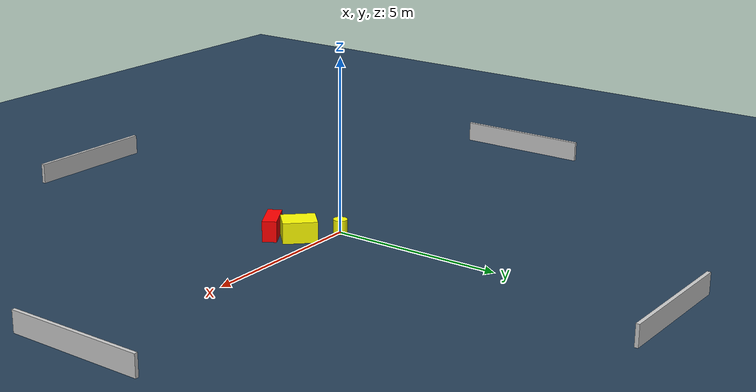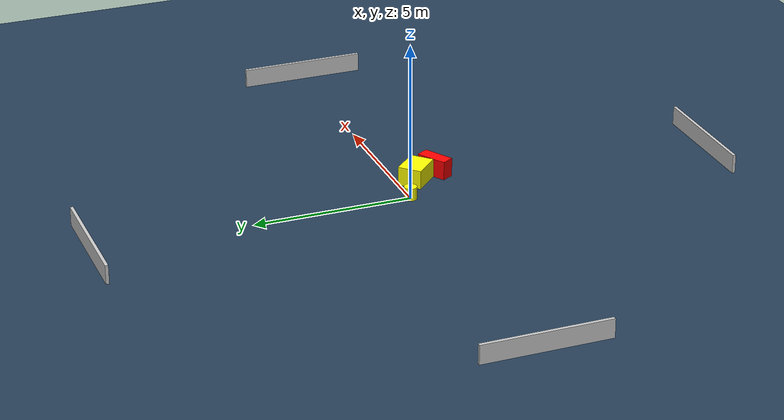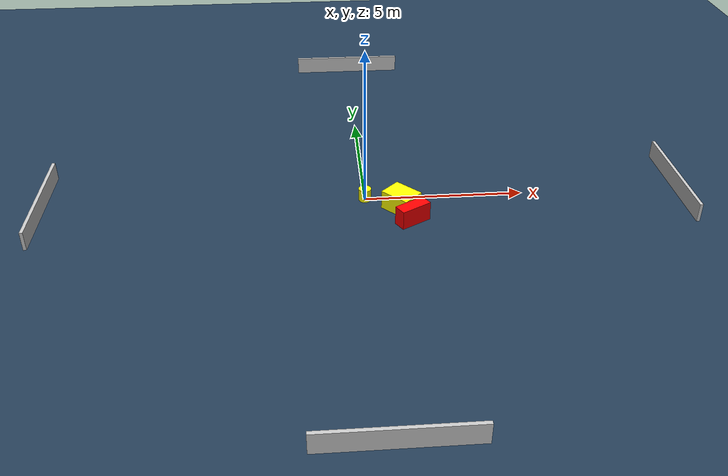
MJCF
<?xml version="1.0" ?>
<mujoco model="generated_environment">
  <option timestep="0.01" integrator="RK4" cone="elliptic"/>
  <default>
    <geom density="1"/>
  </default>
  <asset>
    <texture builtin="gradient" height="3072" name="skybox" rgb1="0.3 0.5 0.7" rgb2="0 0 0" type="skybox" width="512"/>
    <texture builtin="checker" height="300" name="groundplane" rgb1="0.2 0.3 0.4" rgb2="0.1 0.2 0.3" type="2d" width="300"/>
    <material name="groundplane" reflectance="0.2" texrepeat="5 5" texture="groundplane"/>
  </asset>
  <worldbody>
    <light dir="0 0 -1" directional="true" pos="0 0 1.5"/>
    <geom condim="3" friction="0.5 0.005 0.001" material="groundplane" name="floor" pos="0 0 0" size="0 0 0.05" type="plane"/>
    <body name="walls">
      <geom name="wall_1" condim="4" pos="-10.0 0.0 0.3" rgba="0.800000011920929 0.800000011920929 0.800000011920929 1.0" size="0.05 2.0 0.3" type="box"/>
      <geom name="wall_2" condim="4" pos="10.0 0.0 0.3" rgba="0.800000011920929 0.800000011920929 0.800000011920929 1.0" size="0.05 2.0 0.3" type="box"/>
      <geom name="wall_3" condim="4" pos="0.0 -10.0 0.3" rgba="0.800000011920929 0.800000011920929 0.800000011920929 1.0" size="2.0 0.05 0.3" type="box"/>
      <geom name="wall_4" condim="4" pos="0.0 10.0 0.3" rgba="0.800000011920929 0.800000011920929 0.800000011920929 1.0" size="2.0 0.05 0.3" type="box"/>
    </body>
    <body name="robot">
      <joint name="joint_x" type="slide" pos="0 0 0" axis="1 0 0"/>
      <joint name="joint_y" type="slide" pos="0 0 0" axis="0 1 0"/>
      <geom name="robot" type="cylinder" pos="0.0 0.0 0.2" size="0.2 0.2 0.0" mass="5.0" friction="1.0 0.005 0.0001" condim="4" rgba="1.0 1.0 0.0 1.0"/>
    </body>
    <body name="obstacle_1_movable">
      <geom name="obstacle_1_movable" condim="4" pos="1.0862557499018382 -0.6071165566259658 0.3" euler="0 0 134.40072498478702" friction="0.0 0.005 0.001" rgba="1.0 1.0 0.0 1.0" size="0.4882757136335099 0.3781601900319952 0.3" type="box" mass="0.1"/>
      <joint type="free"/>
    </body>
    <body name="obstacle_2_static">
      <geom name="obstacle_2_static" condim="4" pos="1.3530900559688304 -1.3462549600805243 0.3" euler="0 0 210.31329319183243" friction="0.0 0.005 0.001" rgba="1.0 0.0 0.0 1.0" size="0.5069791476178256 0.20390608211724937 0.3" type="box"/>
    </body>
  </worldbody>
  <actuator>
    <motor name="actuator_x" joint="joint_x" gear="1" ctrlrange="-1 1"/>
    <motor name="actuator_y" joint="joint_y" gear="1" ctrlrange="-1 1"/>
  </actuator>
</mujoco>
